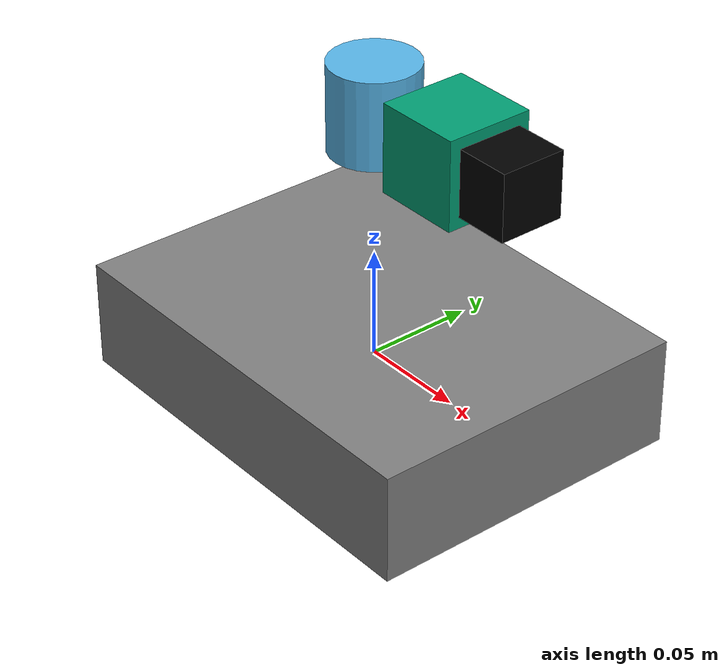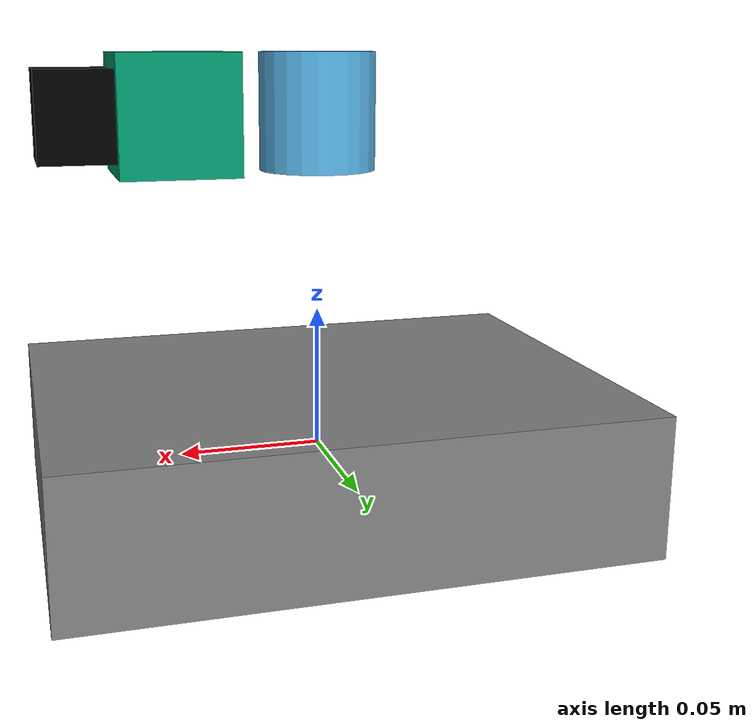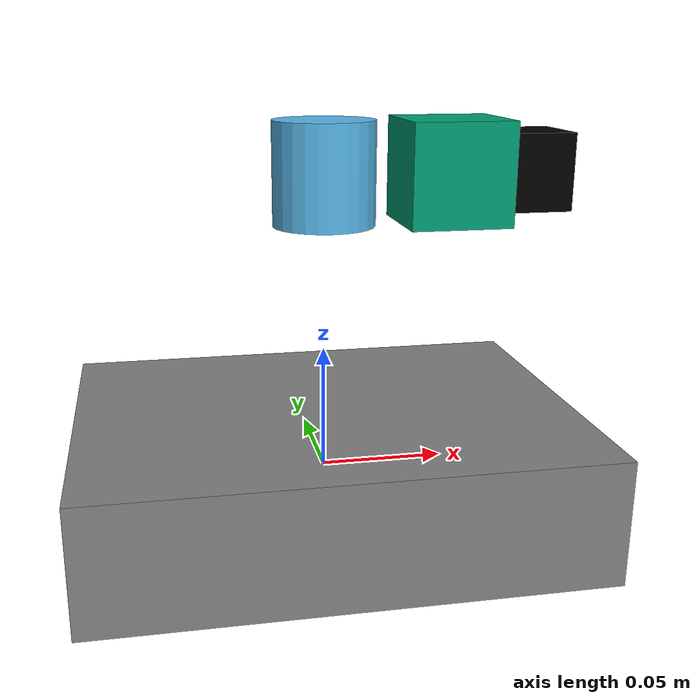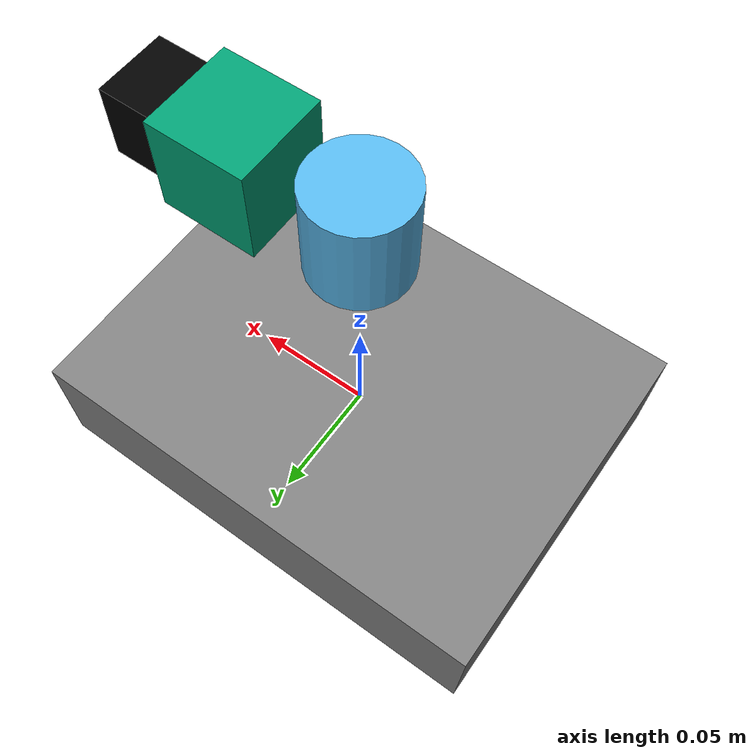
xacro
<?xml version="1.0"?>
<robot xmlns:xacro="http://www.ros.org/wiki/xacro"
       name="raspclaws_hexapod">

    <material name="gray">
        <color rgba="0.5 0.5 0.5 1.0"/>
    </material>
        <material name="black">
        <color rgba="0.0 0.0 0.0 1.0"/>
    </material>

  <!-- Parameter (ANPASSEN!) -->
  <xacro:property name="head_height" value="0.12"/>   <!-- base -> yaw -->
  <xacro:property name="head_length" value="0.05"/>   <!-- yaw -> pitch -->
  <xacro:property name="camera_offset" value="0.03"/> <!-- pitch -> cam -->

  <!-- BASE -->
  <link name="base_link">
    <visual>
      <geometry>
        <box size="0.20 0.15 0.05"/>
      </geometry>
      <material name="gray"/>
    </visual>
  </link>

  <!-- HEAD YAW -->
  <link name="head_yaw_link">
    <visual>
      <geometry>
        <cylinder radius="0.02" length="0.04"/>
      </geometry>
    </visual>
  </link>

  <joint name="head_yaw_joint" type="revolute">
    <parent link="base_link"/>
    <child link="head_yaw_link"/>
    <origin xyz="0 0 ${head_height}" rpy="0 0 0"/>
    <axis xyz="0 0 1"/> <!-- Drehung links/rechts -->
    <limit lower="-3.14" upper="3.14" effort="1.0" velocity="1.0"/>
  </joint>

  <!-- HEAD PITCH -->
  <link name="head_pitch_link">
    <visual>
      <geometry>
        <box size="0.04 0.04 0.04"/>
      </geometry>
    </visual>
  </link>

  <joint name="head_pitch_joint" type="revolute">
    <parent link="head_yaw_link"/>
    <child link="head_pitch_link"/>
    <origin xyz="${head_length} 0 0" rpy="0 0 0"/>
    <axis xyz="0 1 0"/> <!-- hoch/runter -->
    <limit lower="-1.2" upper="1.2" effort="1.0" velocity="1.0"/>
  </joint>

  <!-- CAMERA -->
  <link name="camera_link">
    <visual>
      <geometry>
        <box size="0.03 0.03 0.03"/>
      </geometry>
      <material name="black"/>
    </visual>
  </link>

  <joint name="camera_joint" type="fixed">
    <parent link="head_pitch_link"/>
    <child link="camera_link"/>
    <origin xyz="${camera_offset} 0 0" rpy="0 0 0"/>
  </joint>

</robot>
